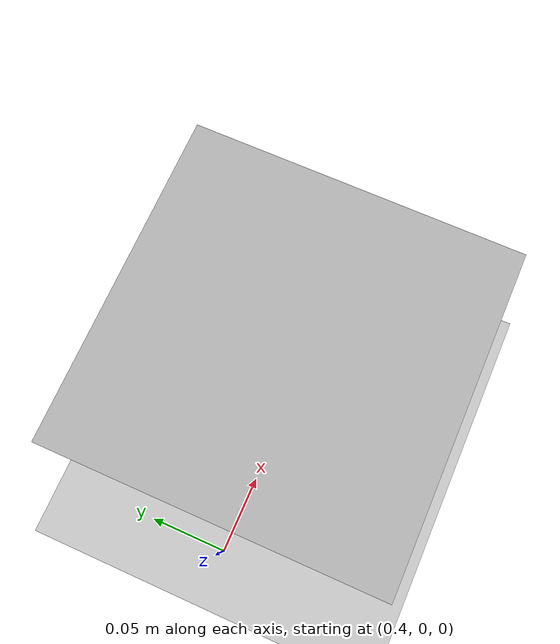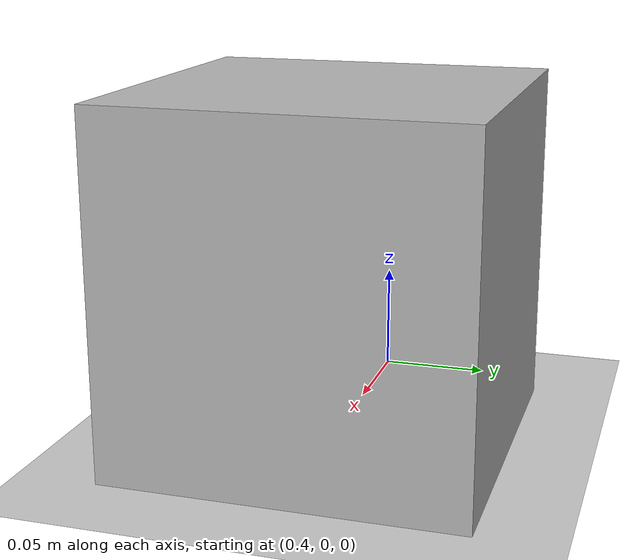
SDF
<?xml version="1.0" ?>
<sdf version="1.4">
  <world name="default">
    <include>
      <uri>model://ground_plane</uri>
    </include>
    <include>
      <uri>model://sun</uri>
    </include>
    <include>
      <uri>model://sobject</uri>
      <name>sobject</name>
      <pose>0.5 0.0 0.08 0 0 3.1416</pose>
    </include>
    <light name='user_point_light_0' type='point'>
      <pose>-0.75 0 0.75 0 0 0</pose>
      <diffuse>0.5 0.5 0.5 1</diffuse>
      <specular>0.1 0.1 0.1 1</specular>
      <attenuation>
        <range>20</range>
        <constant>0.5</constant>
        <linear>0.01</linear>
        <quadratic>0.001</quadratic>
      </attenuation>
      <cast_shadows>0</cast_shadows>
      <direction>0 0 -1</direction>
    </light>
  </world>
</sdf>

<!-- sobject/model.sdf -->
<sdf version="1.5">
  <model name="sobject">
    <link name="link">
      <pose>0 0 0 0 0 0</pose>
      <inertial>
        <mass>0.40</mass>
        <inertia>
          <ixx>0.00058</ixx>
          <ixy>0</ixy>
          <ixz>0</ixz>
          <iyy>0.00058</iyy>
          <iyz>0</iyz>
          <izz>0.00019</izz>
        </inertia>
      </inertial>
      <collision name="collision">
        <geometry>
          <box>
            <size>0.16 0.16 0.16</size>
          </box>
        </geometry>
        <max_contacts>10</max_contacts>
        <surface>
          <contact>
            <ode>
              <mu>0.1</mu>
              <mu2>0.1</mu2>
              <max_vel>0.01</max_vel>
              <min_depth>0.0</min_depth>
            </ode>
          </contact>
          <bounce>
            <restitution_coefficient>0</restitution_coefficient>
            <threshold>1e+06</threshold>
          </bounce>
          <friction>
            <torsional>
              <ode/>
            </torsional>
              <ode/>
          </friction>
        </surface>
      </collision>

      <visual name="visual">
        <geometry>
          <box>
            <size>0.16 0.16 0.16</size>
          </box>
        </geometry>
        <material>
          <script>
            <uri>model://sobject/materials/scripts</uri>
            <uri>model://sobject/materials/textures</uri>
            <name>sobject/Diffuse</name>
          </script>
        </material>
      </visual>
    </link>
  </model>
</sdf>
